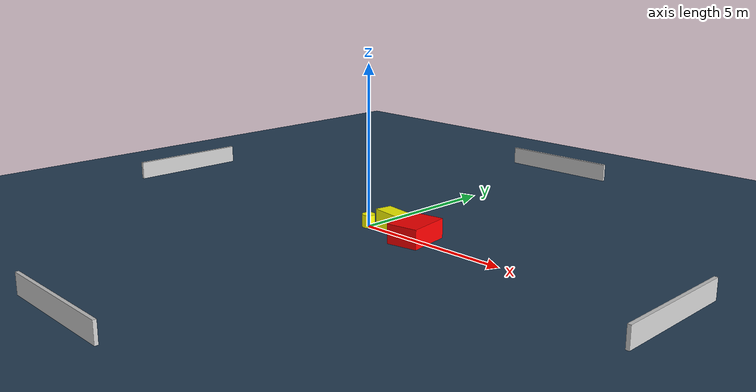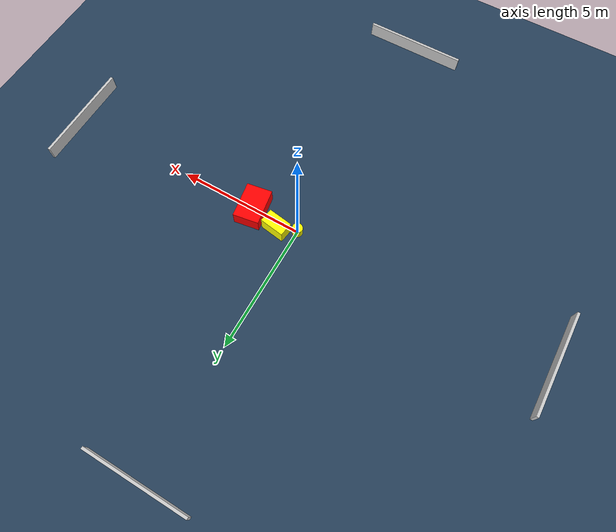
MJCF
<?xml version="1.0" ?>
<mujoco model="generated_environment">
  <option timestep="0.01" integrator="RK4" cone="elliptic"/>
  <default>
    <geom density="1"/>
  </default>
  <asset>
    <texture builtin="gradient" height="3072" name="skybox" rgb1="0.3 0.5 0.7" rgb2="0 0 0" type="skybox" width="512"/>
    <texture builtin="checker" height="300" name="groundplane" rgb1="0.2 0.3 0.4" rgb2="0.1 0.2 0.3" type="2d" width="300"/>
    <material name="groundplane" reflectance="0.2" texrepeat="5 5" texture="groundplane"/>
  </asset>
  <worldbody>
    <light dir="0 0 -1" directional="true" pos="0 0 1.5"/>
    <geom condim="3" friction="0.5 0.005 0.001" material="groundplane" name="floor" pos="0 0 0" size="0 0 0.05" type="plane"/>
    <body name="walls">
      <geom name="wall_1" condim="4" pos="-10.0 0.0 0.3" rgba="0.800000011920929 0.800000011920929 0.800000011920929 1.0" size="0.05 2.0 0.3" type="box"/>
      <geom name="wall_2" condim="4" pos="10.0 0.0 0.3" rgba="0.800000011920929 0.800000011920929 0.800000011920929 1.0" size="0.05 2.0 0.3" type="box"/>
      <geom name="wall_3" condim="4" pos="0.0 -10.0 0.3" rgba="0.800000011920929 0.800000011920929 0.800000011920929 1.0" size="2.0 0.05 0.3" type="box"/>
      <geom name="wall_4" condim="4" pos="0.0 10.0 0.3" rgba="0.800000011920929 0.800000011920929 0.800000011920929 1.0" size="2.0 0.05 0.3" type="box"/>
    </body>
    <body name="robot">
      <joint name="joint_x" type="slide" pos="0 0 0" axis="1 0 0"/>
      <joint name="joint_y" type="slide" pos="0 0 0" axis="0 1 0"/>
      <geom name="robot" type="cylinder" pos="0.0 0.0 0.2" size="0.2 0.2 0.0" mass="5.0" friction="1.0 0.005 0.0001" condim="4" rgba="1.0 1.0 0.0 1.0"/>
    </body>
    <body name="obstacle_1_movable">
      <geom name="obstacle_1_movable" condim="4" pos="0.7548022972816886 0.27161853976425504 0.3" euler="0 0 81.69785328966088" friction="0.0 0.005 0.001" rgba="1.0 1.0 0.0 1.0" size="0.2741973911451197 0.47774614885766514 0.3" type="box" mass="0.1"/>
      <joint type="free"/>
    </body>
    <body name="obstacle_2_static">
      <geom name="obstacle_2_static" condim="4" pos="1.911169841875491 0.029424992831328493 0.3" euler="0 0 99.34515914620776" friction="0.0 0.005 0.001" rgba="1.0 0.0 0.0 1.0" size="0.702572197472757 0.4987655996588488 0.3" type="box"/>
    </body>
  </worldbody>
  <actuator>
    <motor name="actuator_x" joint="joint_x" gear="1" ctrlrange="-1 1"/>
    <motor name="actuator_y" joint="joint_y" gear="1" ctrlrange="-1 1"/>
  </actuator>
</mujoco>
